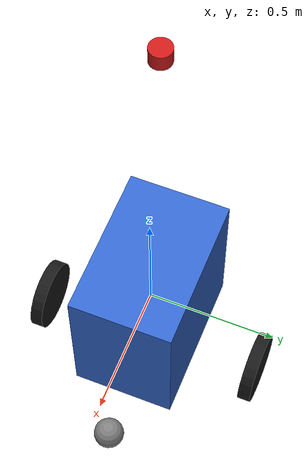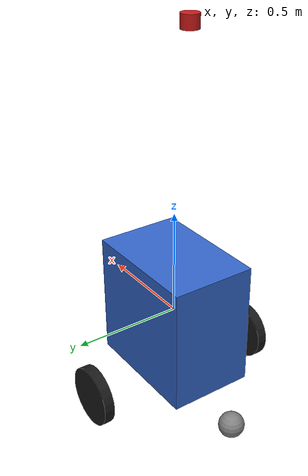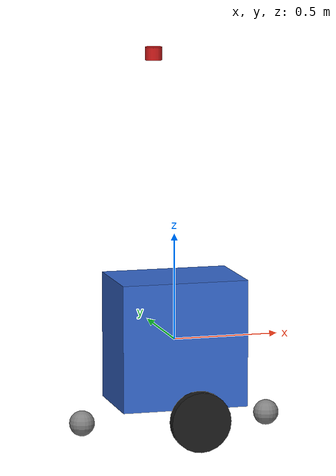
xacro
<?xml version="1.0"?>
<robot name="trolley" xmlns:xacro="http://www.ros.org/wiki/xacro">

  <xacro:arg name="enable_kinect" default="false"/>

  <!-- Perfil real A_deployed; ver config/real_hardware_profile.yaml. -->
  <xacro:property name="base_w"  value="0.40"/>
  <xacro:property name="base_d"  value="0.60"/>
  <xacro:property name="base_h"  value="0.60"/>
  <xacro:property name="wheel_r" value="0.14"/>
  <xacro:property name="wheel_w" value="0.05"/>
  <xacro:property name="wb"      value="0.45"/>  <!-- half wheel separation -->

  <!-- Inertialess root required by KDL / robot_state_publisher. -->
  <link name="base_footprint"/>
  <joint name="base_footprint_joint" type="fixed">
    <parent link="base_footprint"/>
    <child link="base_link"/>
    <origin xyz="0 0 0"/>
  </joint>

  <!-- Base -->
  <link name="base_link">
    <visual>
      <geometry><box size="${base_d} ${base_w} ${base_h}"/></geometry>
      <material name="blue"><color rgba="0.2 0.4 0.8 1"/></material>
    </visual>
    <collision><geometry><box size="${base_d} ${base_w} ${base_h}"/></geometry></collision>
    <inertial><mass value="14"/><inertia ixx="0.607" ixy="0" ixz="0" iyy="0.840" iyz="0" izz="0.607"/></inertial>
  </link>

  <!-- Left wheel -->
  <link name="wheel_left">
    <visual><geometry><cylinder radius="${wheel_r}" length="${wheel_w}"/></geometry>
      <material name="black"><color rgba="0.1 0.1 0.1 1"/></material></visual>
    <collision><geometry><cylinder radius="${wheel_r}" length="${wheel_w}"/></geometry></collision>
    <inertial><mass value="0.5"/><inertia ixx="0.01" ixy="0" ixz="0" iyy="0.01" iyz="0" izz="0.01"/></inertial>
  </link>
  <joint name="joint_wheel_left" type="continuous">
    <parent link="base_link"/><child link="wheel_left"/>
    <origin xyz="0 ${wb} ${-base_h/2}" rpy="${pi/2} 0 0"/>
    <axis xyz="0 0 -1"/>
  </joint>

  <!-- Right wheel -->
  <link name="wheel_right">
    <visual><geometry><cylinder radius="${wheel_r}" length="${wheel_w}"/></geometry>
      <material name="black"><color rgba="0.1 0.1 0.1 1"/></material></visual>
    <collision><geometry><cylinder radius="${wheel_r}" length="${wheel_w}"/></geometry></collision>
    <inertial><mass value="0.5"/><inertia ixx="0.01" ixy="0" ixz="0" iyy="0.01" iyz="0" izz="0.01"/></inertial>
  </link>
  <joint name="joint_wheel_right" type="continuous">
    <parent link="base_link"/><child link="wheel_right"/>
    <origin xyz="0 ${-wb} ${-base_h/2}" rpy="${pi/2} 0 0"/>
    <axis xyz="0 0 -1"/>
  </joint>

  <!-- Dos casters reales de 0.12 m, separados 0.90 m longitudinalmente. -->
  <xacro:macro name="caster" params="name x">
    <link name="${name}">
      <visual><geometry><sphere radius="0.06"/></geometry>
        <material name="gray"><color rgba="0.5 0.5 0.5 1"/></material></visual>
      <collision><geometry><sphere radius="0.06"/></geometry></collision>
      <inertial><mass value="0.2"/><inertia ixx="0.00048" ixy="0" ixz="0" iyy="0.00048" iyz="0" izz="0.00048"/></inertial>
    </link>
    <joint name="${name}_joint" type="fixed">
      <parent link="base_link"/><child link="${name}"/>
      <!-- Mismo plano de contacto que las ruedas motrices (z=0.01 antes
           del asentamiento de la suspension numerica). -->
      <origin xyz="${x} 0 -0.38"/>
    </joint>
  </xacro:macro>
  <xacro:caster name="caster_front" x="0.45"/>
  <xacro:caster name="caster_rear" x="-0.45"/>

  <!-- Las ruedas caster reales pivotan libremente. Las esferas equivalentes
       necesitan friccion baja para no bloquear el giro diferencial. -->
  <gazebo reference="caster_front">
    <mu1>0.001</mu1><mu2>0.001</mu2>
  </gazebo>
  <gazebo reference="caster_rear">
    <mu1>0.001</mu1><mu2>0.001</mu2>
  </gazebo>

  <!-- LIDAR -->
  <link name="base_laser">
    <visual><geometry><cylinder radius="0.04" length="0.06"/></geometry>
      <material name="red"><color rgba="0.8 0.1 0.1 1"/></material></visual>
    <inertial><mass value="0.1"/><inertia ixx="0.001" ixy="0" ixz="0" iyy="0.001" iyz="0" izz="0.001"/></inertial>
  </link>
  <joint name="lidar_joint" type="fixed">
    <parent link="base_link"/><child link="base_laser"/>
    <origin xyz="-0.10 0 1.35"/>
  </joint>

  <!-- MPU9250/6500: configuración equivalente al firmware real (200 Hz). -->
  <link name="imu_link">
    <inertial><mass value="0.01"/><inertia ixx="0.00001" ixy="0" ixz="0" iyy="0.00001" iyz="0" izz="0.00001"/></inertial>
  </link>
  <joint name="imu_joint" type="fixed">
    <parent link="base_link"/><child link="imu_link"/>
    <origin xyz="0 0 0"/>
  </joint>

  <!-- Kinect / RGB-D opcional. La geometria y los frames permanecen en el
       URDF aunque el sensor solo se instancia cuando enable_kinect=true. -->
  <xacro:if value="$(arg enable_kinect)">
    <link name="kinect_link">
      <visual>
        <geometry><box size="0.07 0.28 0.07"/></geometry>
        <material name="kinect_gray"><color rgba="0.12 0.12 0.12 1"/></material>
      </visual>
      <inertial><mass value="0.35"/><inertia ixx="0.0024" ixy="0" ixz="0" iyy="0.0003" iyz="0" izz="0.0024"/></inertial>
    </link>
    <joint name="kinect_joint" type="fixed">
      <parent link="base_link"/><child link="kinect_link"/>
      <origin xyz="-0.10 0 1.30"/>
    </joint>
    <link name="camera_depth_optical_frame"/>
    <joint name="camera_depth_optical_joint" type="fixed">
      <parent link="kinect_link"/><child link="camera_depth_optical_frame"/>
      <origin xyz="0 0 0" rpy="-${pi/2} 0 -${pi/2}"/>
    </joint>
    <link name="camera_rgb_optical_frame"/>
    <joint name="camera_rgb_optical_joint" type="fixed">
      <parent link="camera_depth_optical_frame"/><child link="camera_rgb_optical_frame"/>
      <origin xyz="0 0 0"/>
    </joint>
  </xacro:if>

  <!-- Gazebo plugins -->
  <gazebo>
    <plugin filename="gz-sim-diff-drive-system" name="gz::sim::systems::DiffDrive">
      <left_joint>joint_wheel_left</left_joint>
      <right_joint>joint_wheel_right</right_joint>
      <wheel_separation>${wb*2}</wheel_separation>
      <wheel_radius>${wheel_r}</wheel_radius>
      <!-- Límite real usado por Stadia/firmware: 0.40 m/s. -->
      <max_linear_velocity>0.40</max_linear_velocity>
      <max_angular_velocity>0.70</max_angular_velocity>
      <max_linear_acceleration>0.50</max_linear_acceleration>
      <max_angular_acceleration>1.00</max_angular_acceleration>
      <topic>cmd_vel</topic>
      <odom_topic>odom</odom_topic>
      <frame_id>odom</frame_id>
      <child_frame_id>base_link</child_frame_id>
    </plugin>
  </gazebo>

  <!-- LIDAR sensor -->
  <gazebo reference="base_laser">
    <sensor name="lidar" type="gpu_lidar">
      <always_on>true</always_on>
      <update_rate>10</update_rate>
      <topic>scan</topic>
      <gz_frame_id>base_laser</gz_frame_id>
      <lidar>
        <scan><horizontal>
          <samples>360</samples><resolution>1</resolution>
          <min_angle>-3.14159</min_angle><max_angle>3.14159</max_angle>
        </horizontal></scan>
        <range><min>0.10</min><max>8.0</max><resolution>0.01</resolution></range>
      </lidar>
    </sensor>
  </gazebo>

  <gazebo reference="imu_link">
    <sensor name="mpu9250" type="imu">
      <always_on>true</always_on>
      <update_rate>200</update_rate>
      <topic>imu/data_raw</topic>
      <gz_frame_id>imu_link</gz_frame_id>
      <imu>
        <angular_velocity>
          <x><noise type="gaussian"><mean>0</mean><stddev>0.004</stddev></noise></x>
          <y><noise type="gaussian"><mean>0</mean><stddev>0.004</stddev></noise></y>
          <z><noise type="gaussian"><mean>-0.00024</mean><stddev>0.004</stddev></noise></z>
        </angular_velocity>
      </imu>
    </sensor>
  </gazebo>

  <xacro:if value="$(arg enable_kinect)">
    <gazebo reference="kinect_link">
      <sensor name="kinect_rgbd" type="rgbd_camera">
        <always_on>true</always_on>
        <update_rate>5</update_rate>
        <topic>kinect_sim</topic>
        <gz_frame_id>camera_depth_optical_frame</gz_frame_id>
        <camera>
          <horizontal_fov>1.014</horizontal_fov>
          <image>
            <width>320</width><height>240</height><format>R8G8B8</format>
          </image>
          <clip><near>0.40</near><far>5.0</far></clip>
          <optical_frame_id>camera_depth_optical_frame</optical_frame_id>
        </camera>
        <visualize>false</visualize>
      </sensor>
    </gazebo>
  </xacro:if>

</robot>
